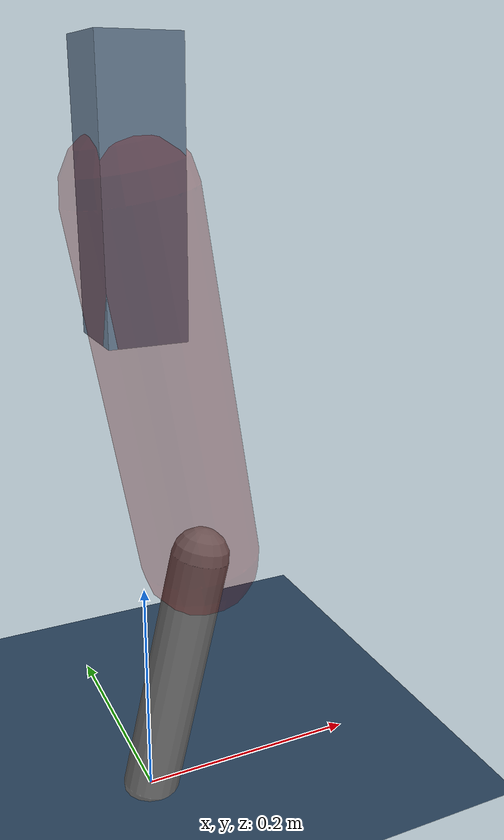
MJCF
<mujoco model="Hopper2D">
	<compiler inertiafromgeom="true" angle="radian" />
	<option timestep="0.001" integrator="implicit" cone="elliptic" solver="Newton" tolerance="1e-10" />

	<default>
		<geom contype="1" conaffinity="1" condim="3" friction="2 0.005 0.0001" solref="0.005 1" />
		<joint limited="true" damping="0.1" />
	</default>

	<asset>
		<texture name="skybox" type="skybox" builtin="gradient" rgb1=".4 .6 .8" rgb2="0 0 0" width="800" height="800" />
		<texture name="grid" type="2d" builtin="checker" rgb1=".1 .2 .3" rgb2=".2 .3 .4" width="300" height="300" mark="edge" markrgb=".2 .3 .4" />
		<material name="ground" texture="grid" texrepeat="1 1" texuniform="true" reflectance="0.1" />
		<material name="leg" rgba="0.5 0.6 0.7 1" />
	</asset>

	<worldbody>

		<geom name="floor" type="plane" size="5 5 0.25" material="ground" />

		<light directional="false" diffuse="0.8 0.8 0.8" specular="0.3 0.3 0.3" pos="0 0 2" dir="0 0 -1" />
		<light mode="targetbodycom" target="base" directional="false" diffuse="0.8 0.8 0.8" specular="0.3 0.3 0.3" pos="0 0 2" dir="0 0 -1" />

		<camera name="fixed" pos="0 -2 1" xyaxes="1 0 0 0 0 1" />
		<camera name="tracking" mode="trackcom" pos="0 -3 1" />

		<body name="root" pos="0 0 0.5130287886965448">
			<joint name="slide_x" type="slide" axis="1 0 0" range="-100 100" />
			<joint name="slide_z" type="slide" axis="0 0 1" range="0 10" />

			<body name="base" pos="0 0 0">
				<geom name="torso" type="box" size="0.03 0.03 0.1" mass="2.67" material="leg" />

				<body name="link1" pos="0 0 0" euler="0 1.3996267969051055 0">
					<joint type="hinge" axis="0 -1 0" pos="0 0 0" name="hinge1" limited="true" range="-3.14 3.14" stiffness="0" damping="0.1" />
					<geom name="thigh" type="capsule" fromto="0 0 0 0.29606237954217335 0 0" size="0.05" rgba="0.5 0 0 0.3" mass="0.9780684247638681" />

					<body name="link2" pos="0.29606237954217335 0 0" euler="0 0.39522998284772753 0">
						<joint type="hinge" axis="0 -1 0" pos="0 0 0" name="hinge2" limited="true" range="-3.14 3.14" stiffness="0" damping="0.1" />
						<geom name="shank" type="capsule" fromto="0 0 0 0.22696640915437144 0 0" size="0.025" mass="0.4234731273234971" />

					</body>
				</body>
			</body>
		</body>
	</worldbody>

	<actuator>
		<motor name="torque1" joint="hinge1" ctrlrange="-106.51058590994995 106.51058590994995" ctrllimited="true" gear="1" />
		<motor name="torque2" joint="hinge2" ctrlrange="-113.83416273601827 113.83416273601827" ctrllimited="true" gear="1" />
	</actuator>
</mujoco>
